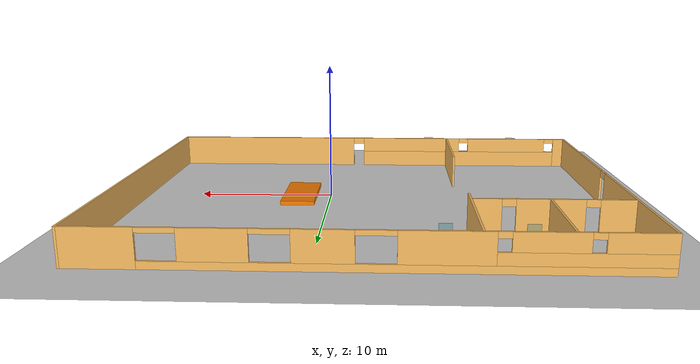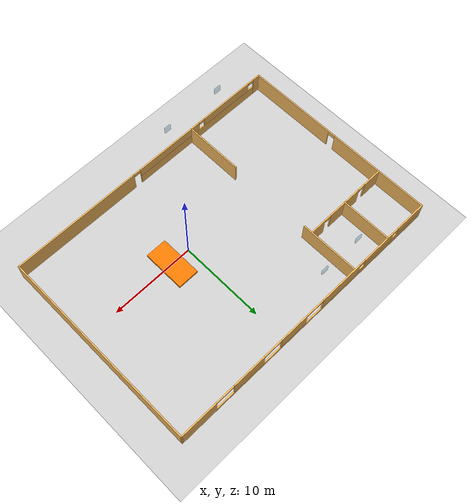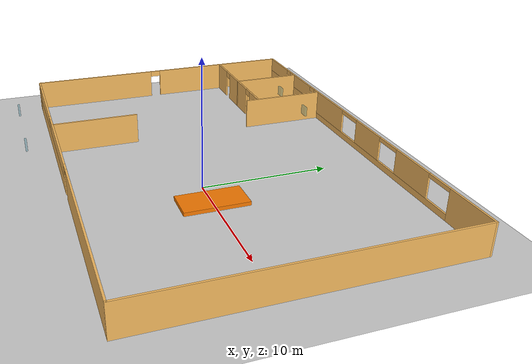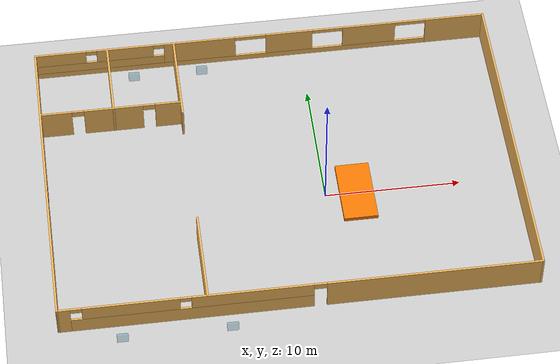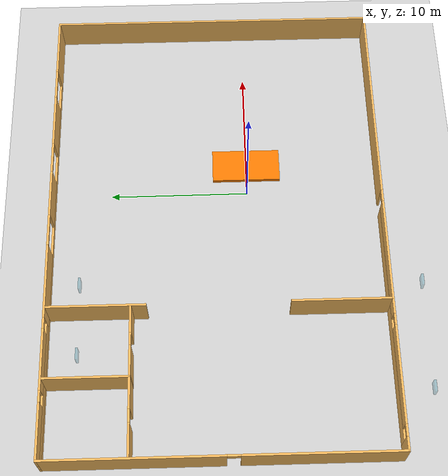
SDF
<sdf version="1.4">
 <world name="default">
  <gravity>0.0 0.0 -3.81</gravity>
  <include><uri>model://sun</uri></include>
  <include><uri>model://ground_plane</uri></include>
  <include><uri>model://AdrianTemple</uri></include>
  <include>
   <uri>model://small_window</uri>
   <name>small_window1</name>
   <pose>-7.803750 11.928600 0.793608 0 0 0</pose>
  </include>
  <include>
   <uri>model://small_window</uri>
   <name>small_window2</name>
   <pose>-12.936800 11.925300 0.793517 0 0 0</pose>
  </include>
  <include>
   <uri>model://small_window</uri>
   <name>small_window3</name>
   <pose>-8.153930 -11.925400 0.803719 0 0 0</pose>
  </include>
  <include>
   <uri>model://small_window</uri>
   <name>small_window4</name>
   <pose>-15.830200 -11.927700 0.805974 0 0 0</pose>
  </include>
  <include><uri>model://small_floor</uri><name>small_floor</name><pose>2.3 0 0 0 0 0</pose></include>
 </world>
</sdf>

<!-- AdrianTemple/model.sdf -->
<sdf version='1.6'>
  <model name='AdrianTemple'>
    <pose frame=''>-3.03305 2.27028 0 0 -0 0</pose>
    <link name='Wall_10'>
      <pose frame=''>-0 -11.925 0 0 -0 0</pose>
      <visual name='Wall_10_Visual_0'>
        <pose frame=''>-16.746 0 1.25 0 -0 0</pose>
        <geometry>
          <box>
            <size>1.00805 0.15 2.5</size>
          </box>
        </geometry>
        <material>
          <script>
            <uri>file://media/materials/scripts/gazebo.material</uri>
            <name>Gazebo/Grey</name>
          </script>
          <ambient>0.952941 0.721569 0.368627 1</ambient>
        </material>
        <meta>
          <layer>0</layer>
        </meta>
      </visual>
      <collision name='Wall_10_Collision_0'>
        <geometry>
          <box>
            <size>1.00805 0.15 2.5</size>
          </box>
        </geometry>
        <pose frame=''>-16.746 0 1.25 0 -0 0</pose>
      </collision>
      <visual name='Wall_10_Visual_1'>
        <pose frame=''>9.5202 0 1.25 0 -0 0</pose>
        <geometry>
          <box>
            <size>15.4596 0.15 2.5</size>
          </box>
        </geometry>
        <material>
          <script>
            <uri>file://media/materials/scripts/gazebo.material</uri>
            <name>Gazebo/Grey</name>
          </script>
          <ambient>0.952941 0.721569 0.368627 1</ambient>
        </material>
        <meta>
          <layer>0</layer>
        </meta>
      </visual>
      <collision name='Wall_10_Collision_1'>
        <geometry>
          <box>
            <size>15.4596 0.15 2.5</size>
          </box>
        </geometry>
        <pose frame=''>9.5202 0 1.25 0 -0 0</pose>
      </collision>
      <visual name='Wall_10_Visual_2'>
        <pose frame=''>-7.67577 0 0.65 0 -0 0</pose>
        <geometry>
          <box>
            <size>17.1324 0.15 1.3</size>
          </box>
        </geometry>
        <material>
          <script>
            <uri>file://media/materials/scripts/gazebo.material</uri>
            <name>Gazebo/Grey</name>
          </script>
          <ambient>0.952941 0.721569 0.368627 1</ambient>
        </material>
        <meta>
          <layer>0</layer>
        </meta>
      </visual>
      <collision name='Wall_10_Collision_2'>
        <geometry>
          <box>
            <size>17.1324 0.15 1.3</size>
          </box>
        </geometry>
        <pose frame=''>-7.67577 0 0.65 0 -0 0</pose>
      </collision>
      <visual name='Wall_10_Visual_3'>
        <pose frame=''>-12.0029 0 1.9 0 -0 0</pose>
        <geometry>
          <box>
            <size>6.87815 0.15 1.2</size>
          </box>
        </geometry>
        <material>
          <script>
            <uri>file://media/materials/scripts/gazebo.material</uri>
            <name>Gazebo/Grey</name>
          </script>
          <ambient>0.952941 0.721569 0.368627 1</ambient>
        </material>
        <meta>
          <layer>0</layer>
        </meta>
      </visual>
      <collision name='Wall_10_Collision_3'>
        <geometry>
          <box>
            <size>6.87815 0.15 1.2</size>
          </box>
        </geometry>
        <pose frame=''>-12.0029 0 1.9 0 -0 0</pose>
      </collision>
      <visual name='Wall_10_Visual_4'>
        <pose frame=''>-3.43669 0 1.9 0 -0 0</pose>
        <geometry>
          <box>
            <size>8.65421 0.15 1.2</size>
          </box>
        </geometry>
        <material>
          <script>
            <uri>file://media/materials/scripts/gazebo.material</uri>
            <name>Gazebo/Grey</name>
          </script>
          <ambient>0.952941 0.721569 0.368627 1</ambient>
        </material>
        <meta>
          <layer>0</layer>
        </meta>
      </visual>
      <collision name='Wall_10_Collision_4'>
        <geometry>
          <box>
            <size>8.65421 0.15 1.2</size>
          </box>
        </geometry>
        <pose frame=''>-3.43669 0 1.9 0 -0 0</pose>
      </collision>
      <visual name='Wall_10_Visual_5'>
        <pose frame=''>1.34041 0 2.25 0 -0 0</pose>
        <geometry>
          <box>
            <size>0.9 0.15 0.5</size>
          </box>
        </geometry>
        <material>
          <script>
            <uri>file://media/materials/scripts/gazebo.material</uri>
            <name>Gazebo/Grey</name>
          </script>
          <ambient>0.952941 0.721569 0.368627 1</ambient>
        </material>
        <meta>
          <layer>0</layer>
        </meta>
      </visual>
      <collision name='Wall_10_Collision_5'>
        <geometry>
          <box>
            <size>0.9 0.15 0.5</size>
          </box>
        </geometry>
        <pose frame=''>1.34041 0 2.25 0 -0 0</pose>
      </collision>
      <visual name='Wall_10_Visual_6'>
        <pose frame=''>-15.8419 0 2.3 0 -0 0</pose>
        <geometry>
          <box>
            <size>0.8 0.15 0.4</size>
          </box>
        </geometry>
        <material>
          <script>
            <uri>file://media/materials/scripts/gazebo.material</uri>
            <name>Gazebo/Grey</name>
          </script>
          <ambient>0.952941 0.721569 0.368627 1</ambient>
        </material>
        <meta>
          <layer>0</layer>
        </meta>
      </visual>
      <collision name='Wall_10_Collision_6'>
        <geometry>
          <box>
            <size>0.8 0.15 0.4</size>
          </box>
        </geometry>
        <pose frame=''>-15.8419 0 2.3 0 -0 0</pose>
      </collision>
      <visual name='Wall_10_Visual_7'>
        <pose frame=''>-8.1638 0 2.3 0 -0 0</pose>
        <geometry>
          <box>
            <size>0.8 0.15 0.4</size>
          </box>
        </geometry>
        <material>
          <script>
            <uri>file://media/materials/scripts/gazebo.material</uri>
            <name>Gazebo/Grey</name>
          </script>
          <ambient>0.952941 0.721569 0.368627 1</ambient>
        </material>
        <meta>
          <layer>0</layer>
        </meta>
      </visual>
      <collision name='Wall_10_Collision_7'>
        <geometry>
          <box>
            <size>0.8 0.15 0.4</size>
          </box>
        </geometry>
        <pose frame=''>-8.1638 0 2.3 0 -0 0</pose>
      </collision>
    </link>
    <link name='Wall_12'>
      <collision name='Wall_12_Collision'>
        <geometry>
          <box>
            <size>24 0.15 2.5</size>
          </box>
        </geometry>
        <pose frame=''>0 0 1.25 0 -0 0</pose>
      </collision>
      <visual name='Wall_12_Visual'>
        <pose frame=''>0 0 1.25 0 -0 0</pose>
        <geometry>
          <box>
            <size>24 0.15 2.5</size>
          </box>
        </geometry>
        <material>
          <script>
            <uri>file://media/materials/scripts/gazebo.material</uri>
            <name>Gazebo/Grey</name>
          </script>
          <ambient>0.952941 0.721569 0.368627 1</ambient>
        </material>
        <meta>
          <layer>0</layer>
        </meta>
      </visual>
      <pose frame=''>17.175 -0 0 0 -0 1.5708</pose>
    </link>
    <link name='Wall_16'>
      <pose frame=''>-0 11.925 0 0 -0 3.14159</pose>
      <visual name='Wall_16_Visual_0'>
        <pose frame=''>-14.9903 0 1.25 0 -0 0</pose>
        <geometry>
          <box>
            <size>4.51944 0.15 2.5</size>
          </box>
        </geometry>
        <material>
          <script>
            <uri>file://media/materials/scripts/gazebo.material</uri>
            <name>Gazebo/Grey</name>
          </script>
          <ambient>0.952941 0.721569 0.368627 1</ambient>
        </material>
        <meta>
          <layer>0</layer>
        </meta>
      </visual>
      <collision name='Wall_16_Collision_0'>
        <geometry>
          <box>
            <size>4.51944 0.15 2.5</size>
          </box>
        </geometry>
        <pose frame=''>-14.9903 0 1.25 0 -0 0</pose>
      </collision>
      <visual name='Wall_16_Visual_1'>
        <pose frame=''>2.25972 0 0.25 0 -0 0</pose>
        <geometry>
          <box>
            <size>29.9806 0.15 0.5</size>
          </box>
        </geometry>
        <material>
          <script>
            <uri>file://media/materials/scripts/gazebo.material</uri>
            <name>Gazebo/Grey</name>
          </script>
          <ambient>0.952941 0.721569 0.368627 1</ambient>
        </material>
        <meta>
          <layer>0</layer>
        </meta>
      </visual>
      <collision name='Wall_16_Collision_1'>
        <geometry>
          <box>
            <size>29.9806 0.15 0.5</size>
          </box>
        </geometry>
        <pose frame=''>2.25972 0 0.25 0 -0 0</pose>
      </collision>
      <visual name='Wall_16_Visual_2'>
        <pose frame=''>-8.3575 0 1.5 0 -0 0</pose>
        <geometry>
          <box>
            <size>4.06611 0.15 2</size>
          </box>
        </geometry>
        <material>
          <script>
            <uri>file://media/materials/scripts/gazebo.material</uri>
            <name>Gazebo/Grey</name>
          </script>
          <ambient>0.952941 0.721569 0.368627 1</ambient>
        </material>
        <meta>
          <layer>0</layer>
        </meta>
      </visual>
      <collision name='Wall_16_Collision_2'>
        <geometry>
          <box>
            <size>4.06611 0.15 2</size>
          </box>
        </geometry>
        <pose frame=''>-8.3575 0 1.5 0 -0 0</pose>
      </collision>
      <visual name='Wall_16_Visual_3'>
        <pose frame=''>-2.19098 0 1.5 0 -0 0</pose>
        <geometry>
          <box>
            <size>3.58692 0.15 2</size>
          </box>
        </geometry>
        <material>
          <script>
            <uri>file://media/materials/scripts/gazebo.material</uri>
            <name>Gazebo/Grey</name>
          </script>
          <ambient>0.952941 0.721569 0.368627 1</ambient>
        </material>
        <meta>
          <layer>0</layer>
        </meta>
      </visual>
      <collision name='Wall_16_Collision_3'>
        <geometry>
          <box>
            <size>3.58692 0.15 2</size>
          </box>
        </geometry>
        <pose frame=''>-2.19098 0 1.5 0 -0 0</pose>
      </collision>
      <visual name='Wall_16_Visual_4'>
        <pose frame=''>4.6747 0 1.5 0 -0 0</pose>
        <geometry>
          <box>
            <size>5.46443 0.15 2</size>
          </box>
        </geometry>
        <material>
          <script>
            <uri>file://media/materials/scripts/gazebo.material</uri>
            <name>Gazebo/Grey</name>
          </script>
          <ambient>0.952941 0.721569 0.368627 1</ambient>
        </material>
        <meta>
          <layer>0</layer>
        </meta>
      </visual>
      <collision name='Wall_16_Collision_4'>
        <geometry>
          <box>
            <size>5.46443 0.15 2</size>
          </box>
        </geometry>
        <pose frame=''>4.6747 0 1.5 0 -0 0</pose>
      </collision>
      <visual name='Wall_16_Visual_5'>
        <pose frame=''>12.3285 0 0.9 0 -0 0</pose>
        <geometry>
          <box>
            <size>9.84309 0.15 0.8</size>
          </box>
        </geometry>
        <material>
          <script>
            <uri>file://media/materials/scripts/gazebo.material</uri>
            <name>Gazebo/Grey</name>
          </script>
          <ambient>0.952941 0.721569 0.368627 1</ambient>
        </material>
        <meta>
          <layer>0</layer>
        </meta>
      </visual>
      <collision name='Wall_16_Collision_5'>
        <geometry>
          <box>
            <size>9.84309 0.15 0.8</size>
          </box>
        </geometry>
        <pose frame=''>12.3285 0 0.9 0 -0 0</pose>
      </collision>
      <visual name='Wall_16_Visual_6'>
        <pose frame=''>10.37 0 1.9 0 -0 0</pose>
        <geometry>
          <box>
            <size>4.3261 0.15 1.2</size>
          </box>
        </geometry>
        <material>
          <script>
            <uri>file://media/materials/scripts/gazebo.material</uri>
            <name>Gazebo/Grey</name>
          </script>
          <ambient>0.952941 0.721569 0.368627 1</ambient>
        </material>
        <meta>
          <layer>0</layer>
        </meta>
      </visual>
      <collision name='Wall_16_Collision_6'>
        <geometry>
          <box>
            <size>4.3261 0.15 1.2</size>
          </box>
        </geometry>
        <pose frame=''>10.37 0 1.9 0 -0 0</pose>
      </collision>
      <visual name='Wall_16_Visual_7'>
        <pose frame=''>15.2915 0 1.9 0 -0 0</pose>
        <geometry>
          <box>
            <size>3.91699 0.15 1.2</size>
          </box>
        </geometry>
        <material>
          <script>
            <uri>file://media/materials/scripts/gazebo.material</uri>
            <name>Gazebo/Grey</name>
          </script>
          <ambient>0.952941 0.721569 0.368627 1</ambient>
        </material>
        <meta>
          <layer>0</layer>
        </meta>
      </visual>
      <collision name='Wall_16_Collision_7'>
        <geometry>
          <box>
            <size>3.91699 0.15 1.2</size>
          </box>
        </geometry>
        <pose frame=''>15.2915 0 1.9 0 -0 0</pose>
      </collision>
      <visual name='Wall_16_Visual_8'>
        <pose frame=''>7.80691 0 2.3 0 -0 0</pose>
        <geometry>
          <box>
            <size>0.8 0.15 0.4</size>
          </box>
        </geometry>
        <material>
          <script>
            <uri>file://media/materials/scripts/gazebo.material</uri>
            <name>Gazebo/Grey</name>
          </script>
          <ambient>0.952941 0.721569 0.368627 1</ambient>
        </material>
        <meta>
          <layer>0</layer>
        </meta>
      </visual>
      <collision name='Wall_16_Collision_8'>
        <geometry>
          <box>
            <size>0.8 0.15 0.4</size>
          </box>
        </geometry>
        <pose frame=''>7.80691 0 2.3 0 -0 0</pose>
      </collision>
      <visual name='Wall_16_Visual_9'>
        <pose frame=''>12.933 0 2.3 0 -0 0</pose>
        <geometry>
          <box>
            <size>0.8 0.15 0.4</size>
          </box>
        </geometry>
        <material>
          <script>
            <uri>file://media/materials/scripts/gazebo.material</uri>
            <name>Gazebo/Grey</name>
          </script>
          <ambient>0.952941 0.721569 0.368627 1</ambient>
        </material>
        <meta>
          <layer>0</layer>
        </meta>
      </visual>
      <collision name='Wall_16_Collision_9'>
        <geometry>
          <box>
            <size>0.8 0.15 0.4</size>
          </box>
        </geometry>
        <pose frame=''>12.933 0 2.3 0 -0 0</pose>
      </collision>
      <visual name='Wall_16_Visual_10'>
        <pose frame=''>-11.5606 0 2.34 0 -0 0</pose>
        <geometry>
          <box>
            <size>2.34 0.15 0.32</size>
          </box>
        </geometry>
        <material>
          <script>
            <uri>file://media/materials/scripts/gazebo.material</uri>
            <name>Gazebo/Grey</name>
          </script>
          <ambient>0.952941 0.721569 0.368627 1</ambient>
        </material>
        <meta>
          <layer>0</layer>
        </meta>
      </visual>
      <collision name='Wall_16_Collision_10'>
        <geometry>
          <box>
            <size>2.34 0.15 0.32</size>
          </box>
        </geometry>
        <pose frame=''>-11.5606 0 2.34 0 -0 0</pose>
      </collision>
      <visual name='Wall_16_Visual_11'>
        <pose frame=''>-5.15444 0 2.34 0 -0 0</pose>
        <geometry>
          <box>
            <size>2.34 0.15 0.32</size>
          </box>
        </geometry>
        <material>
          <script>
            <uri>file://media/materials/scripts/gazebo.material</uri>
            <name>Gazebo/Grey</name>
          </script>
          <ambient>0.952941 0.721569 0.368627 1</ambient>
        </material>
        <meta>
          <layer>0</layer>
        </meta>
      </visual>
      <collision name='Wall_16_Collision_11'>
        <geometry>
          <box>
            <size>2.34 0.15 0.32</size>
          </box>
        </geometry>
        <pose frame=''>-5.15444 0 2.34 0 -0 0</pose>
      </collision>
      <visual name='Wall_16_Visual_12'>
        <pose frame=''>0.772481 0 2.34 0 -0 0</pose>
        <geometry>
          <box>
            <size>2.34 0.15 0.32</size>
          </box>
        </geometry>
        <material>
          <script>
            <uri>file://media/materials/scripts/gazebo.material</uri>
            <name>Gazebo/Grey</name>
          </script>
          <ambient>0.952941 0.721569 0.368627 1</ambient>
        </material>
        <meta>
          <layer>0</layer>
        </meta>
      </visual>
      <collision name='Wall_16_Collision_12'>
        <geometry>
          <box>
            <size>2.34 0.15 0.32</size>
          </box>
        </geometry>
        <pose frame=''>0.772481 0 2.34 0 -0 0</pose>
      </collision>
    </link>
    <link name='Wall_24'>
      <collision name='Wall_24_Collision'>
        <geometry>
          <box>
            <size>7 0.15 2.5</size>
          </box>
        </geometry>
        <pose frame=''>0 0 1.25 0 -0 0</pose>
      </collision>
      <visual name='Wall_24_Visual'>
        <pose frame=''>0 0 1.25 0 -0 0</pose>
        <geometry>
          <box>
            <size>7 0.15 2.5</size>
          </box>
        </geometry>
        <material>
          <script>
            <uri>file://media/materials/scripts/gazebo.material</uri>
            <name>Gazebo/Grey</name>
          </script>
          <ambient>0.952941 0.721569 0.368627 1</ambient>
        </material>
        <meta>
          <layer>0</layer>
        </meta>
      </visual>
      <pose frame=''>-6.65895 8.45051 0 0 -0 -1.5708</pose>
    </link>
    <link name='Wall_29'>
      <pose frame=''>-11.9867 6.0382 0 0 -0 3.14159</pose>
      <visual name='Wall_29_Visual_0'>
        <pose frame=''>-4.30458 0 1.25 0 -0 0</pose>
        <geometry>
          <box>
            <size>1.89084 0.15 2.5</size>
          </box>
        </geometry>
        <material>
          <script>
            <uri>file://media/materials/scripts/gazebo.material</uri>
            <name>Gazebo/Grey</name>
          </script>
          <ambient>0.952941 0.721569 0.368627 1</ambient>
        </material>
        <meta>
          <layer>0</layer>
        </meta>
      </visual>
      <collision name='Wall_29_Collision_0'>
        <geometry>
          <box>
            <size>1.89084 0.15 2.5</size>
          </box>
        </geometry>
        <pose frame=''>-4.30458 0 1.25 0 -0 0</pose>
      </collision>
      <visual name='Wall_29_Visual_1'>
        <pose frame=''>-0.260705 0 1.25 0 -0 0</pose>
        <geometry>
          <box>
            <size>4.39691 0.15 2.5</size>
          </box>
        </geometry>
        <material>
          <script>
            <uri>file://media/materials/scripts/gazebo.material</uri>
            <name>Gazebo/Grey</name>
          </script>
          <ambient>0.952941 0.721569 0.368627 1</ambient>
        </material>
        <meta>
          <layer>0</layer>
        </meta>
      </visual>
      <collision name='Wall_29_Collision_1'>
        <geometry>
          <box>
            <size>4.39691 0.15 2.5</size>
          </box>
        </geometry>
        <pose frame=''>-0.260705 0 1.25 0 -0 0</pose>
      </collision>
      <visual name='Wall_29_Visual_2'>
        <pose frame=''>4.04387 0 1.25 0 -0 0</pose>
        <geometry>
          <box>
            <size>2.41225 0.15 2.5</size>
          </box>
        </geometry>
        <material>
          <script>
            <uri>file://media/materials/scripts/gazebo.material</uri>
            <name>Gazebo/Grey</name>
          </script>
          <ambient>0.952941 0.721569 0.368627 1</ambient>
        </material>
        <meta>
          <layer>0</layer>
        </meta>
      </visual>
      <collision name='Wall_29_Collision_2'>
        <geometry>
          <box>
            <size>2.41225 0.15 2.5</size>
          </box>
        </geometry>
        <pose frame=''>4.04387 0 1.25 0 -0 0</pose>
      </collision>
      <visual name='Wall_29_Visual_3'>
        <pose frame=''>-2.90916 0 2.25 0 -0 0</pose>
        <geometry>
          <box>
            <size>0.9 0.15 0.5</size>
          </box>
        </geometry>
        <material>
          <script>
            <uri>file://media/materials/scripts/gazebo.material</uri>
            <name>Gazebo/Grey</name>
          </script>
          <ambient>0.952941 0.721569 0.368627 1</ambient>
        </material>
        <meta>
          <layer>0</layer>
        </meta>
      </visual>
      <collision name='Wall_29_Collision_3'>
        <geometry>
          <box>
            <size>0.9 0.15 0.5</size>
          </box>
        </geometry>
        <pose frame=''>-2.90916 0 2.25 0 -0 0</pose>
      </collision>
      <visual name='Wall_29_Visual_4'>
        <pose frame=''>2.38775 0 2.25 0 -0 0</pose>
        <geometry>
          <box>
            <size>0.9 0.15 0.5</size>
          </box>
        </geometry>
        <material>
          <script>
            <uri>file://media/materials/scripts/gazebo.material</uri>
            <name>Gazebo/Grey</name>
          </script>
          <ambient>0.952941 0.721569 0.368627 1</ambient>
        </material>
        <meta>
          <layer>0</layer>
        </meta>
      </visual>
      <collision name='Wall_29_Collision_4'>
        <geometry>
          <box>
            <size>0.9 0.15 0.5</size>
          </box>
        </geometry>
        <pose frame=''>2.38775 0 2.25 0 -0 0</pose>
      </collision>
    </link>
    <link name='Wall_31'>
      <pose frame=''>-17.175 -0 0 0 -0 -1.5708</pose>
      <visual name='Wall_31_Visual_0'>
        <pose frame=''>-5.86076 0 1.25 0 -0 0</pose>
        <geometry>
          <box>
            <size>12.2785 0.15 2.5</size>
          </box>
        </geometry>
        <material>
          <script>
            <uri>file://media/materials/scripts/gazebo.material</uri>
            <name>Gazebo/Grey</name>
          </script>
          <ambient>0.952941 0.721569 0.368627 1</ambient>
        </material>
        <meta>
          <layer>0</layer>
        </meta>
      </visual>
      <collision name='Wall_31_Collision_0'>
        <geometry>
          <box>
            <size>12.2785 0.15 2.5</size>
          </box>
        </geometry>
        <pose frame=''>-5.86076 0 1.25 0 -0 0</pose>
      </collision>
      <visual name='Wall_31_Visual_1'>
        <pose frame=''>6.58925 0 1.25 0 -0 0</pose>
        <geometry>
          <box>
            <size>10.8215 0.15 2.5</size>
          </box>
        </geometry>
        <material>
          <script>
            <uri>file://media/materials/scripts/gazebo.material</uri>
            <name>Gazebo/Grey</name>
          </script>
          <ambient>0.952941 0.721569 0.368627 1</ambient>
        </material>
        <meta>
          <layer>0</layer>
        </meta>
      </visual>
      <collision name='Wall_31_Collision_1'>
        <geometry>
          <box>
            <size>10.8215 0.15 2.5</size>
          </box>
        </geometry>
        <pose frame=''>6.58925 0 1.25 0 -0 0</pose>
      </collision>
      <visual name='Wall_31_Visual_2'>
        <pose frame=''>0.728491 0 2.25 0 -0 0</pose>
        <geometry>
          <box>
            <size>0.9 0.15 0.5</size>
          </box>
        </geometry>
        <material>
          <script>
            <uri>file://media/materials/scripts/gazebo.material</uri>
            <name>Gazebo/Grey</name>
          </script>
          <ambient>0.952941 0.721569 0.368627 1</ambient>
        </material>
        <meta>
          <layer>0</layer>
        </meta>
      </visual>
      <collision name='Wall_31_Collision_2'>
        <geometry>
          <box>
            <size>0.9 0.15 0.5</size>
          </box>
        </geometry>
        <pose frame=''>0.728491 0 2.25 0 -0 0</pose>
      </collision>
    </link>
    <link name='Wall_33'>
      <collision name='Wall_33_Collision'>
        <geometry>
          <box>
            <size>7 0.15 2.5</size>
          </box>
        </geometry>
        <pose frame=''>0 0 1.25 0 -0 0</pose>
      </collision>
      <visual name='Wall_33_Visual'>
        <pose frame=''>0 0 1.25 0 -0 0</pose>
        <geometry>
          <box>
            <size>7 0.15 2.5</size>
          </box>
        </geometry>
        <material>
          <script>
            <uri>file://media/materials/scripts/gazebo.material</uri>
            <name>Gazebo/Grey</name>
          </script>
          <ambient>0.952941 0.721569 0.368627 1</ambient>
        </material>
        <meta>
          <layer>0</layer>
        </meta>
      </visual>
      <pose frame=''>-6.63181 -8.44954 0 0 -0 1.5708</pose>
    </link>
    <link name='Wall_35'>
      <collision name='Wall_35_Collision'>
        <geometry>
          <box>
            <size>6 0.15 2.5</size>
          </box>
        </geometry>
        <pose frame=''>0 0 1.25 0 -0 0</pose>
      </collision>
      <visual name='Wall_35_Visual'>
        <pose frame=''>0 0 1.25 0 -0 0</pose>
        <geometry>
          <box>
            <size>6 0.15 2.5</size>
          </box>
        </geometry>
        <material>
          <script>
            <uri>file://media/materials/scripts/gazebo.material</uri>
            <name>Gazebo/Grey</name>
          </script>
          <ambient>0.952941 0.721569 0.368627 1</ambient>
        </material>
        <meta>
          <layer>0</layer>
        </meta>
      </visual>
      <pose frame=''>-11.7202 8.95509 0 0 -0 -1.5708</pose>
    </link>
    <static>1</static>
  </model>
</sdf>

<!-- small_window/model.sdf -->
<sdf version='1.6'>
  <model name='small_window'>
    <link name='link_2'>
         <visual name='visual'>
        <pose frame=''>0 0 0.9 0 -0 0</pose>
        <geometry>
          <box>
            <size>0.8 0.15 0.8</size>
          </box>
        </geometry>
         <material>
          <lighting>1</lighting>
             <ambient>0.1 0.5 0.6 1</ambient>
          <diffuse>0.1 0.5 0.6 1</diffuse>
          <specular>0.01 0.01 0.01 1</specular>
          <emissive>0 0 0 1</emissive>
        </material>
        <cast_shadows>1</cast_shadows>
        <transparency>0.7</transparency>
      </visual>
      <collision name='collision'>
        <laser_retro>0</laser_retro>
        <max_contacts>10</max_contacts>
        <pose frame=''>0 0 0.9 0 -0 0</pose>
        <geometry>
          <box>
            <size>0.8 0.15 0.8</size>
          </box>
        </geometry>

      </collision>
    </link>
    <static>1</static>
    <allow_auto_disable>1</allow_auto_disable>
  </model>
</sdf>

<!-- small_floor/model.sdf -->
<sdf version='1.6'>
  <model name='small_floor'>
    <link name='link_0'>
      <inertial>
        <mass>1</mass>
        <inertia>
          <ixx>0.166667</ixx>
          <ixy>0</ixy>
          <ixz>0</ixz>
          <iyy>0.166667</iyy>
          <iyz>0</iyz>
          <izz>0.166667</izz>
        </inertia>
        <pose frame=''>0 0 0.15 0 -0 0</pose>
      </inertial>
      <pose frame=''>0 0 0 0 -0 0</pose>
      <gravity>1</gravity>
      <self_collide>0</self_collide>
      <kinematic>0</kinematic>
      <enable_wind>0</enable_wind>
      <visual name='visual'>
        <pose frame=''>0 0 0.15 0 -0 0</pose>
        <geometry>
          <box>
            <size>2.5 5 0.3</size>
          </box>
        </geometry>
        <material>
          <lighting>1</lighting>
          <script>
            <uri>file://media/materials/scripts/gazebo.material</uri>
            <name>Gazebo/Grey</name>
          </script>
          <shader type='pixel'>
            <normal_map>__default__</normal_map>
          </shader>
          <ambient>0.561 0.349 0.008 1</ambient>
          <diffuse>0.961 0.475 0 1</diffuse>
          <specular>0.561 0.349 0.008 1</specular>
          <emissive>0 0 0 1</emissive>
        </material>
        <transparency>0</transparency>
        <cast_shadows>1</cast_shadows>
      </visual>
      <collision name='collision'>
        <laser_retro>0</laser_retro>
        <max_contacts>10</max_contacts>
        <pose frame=''>0 0 0.15 0 -0 0</pose>
        <geometry>
          <box>
            <size>2.5 5 0.3</size>
          </box>
        </geometry>
        <surface>
          <friction>
            <ode>
              <mu>1</mu>
              <mu2>1</mu2>
              <fdir1>0 0 0</fdir1>
              <slip1>0</slip1>
              <slip2>0</slip2>
            </ode>
            <torsional>
              <coefficient>1</coefficient>
              <patch_radius>0</patch_radius>
              <surface_radius>0</surface_radius>
              <use_patch_radius>1</use_patch_radius>
              <ode>
                <slip>0</slip>
              </ode>
            </torsional>
          </friction>
          <bounce>
            <restitution_coefficient>0</restitution_coefficient>
            <threshold>1e+06</threshold>
          </bounce>
          <contact>
            <collide_without_contact>0</collide_without_contact>
            <collide_without_contact_bitmask>1</collide_without_contact_bitmask>
            <collide_bitmask>1</collide_bitmask>
            <ode>
              <soft_cfm>0</soft_cfm>
              <soft_erp>0.2</soft_erp>
              <kp>1e+13</kp>
              <kd>1</kd>
              <max_vel>0.01</max_vel>
              <min_depth>0</min_depth>
            </ode>
            <bullet>
              <split_impulse>1</split_impulse>
              <split_impulse_penetration_threshold>-0.01</split_impulse_penetration_threshold>
              <soft_cfm>0</soft_cfm>
              <soft_erp>0.2</soft_erp>
              <kp>1e+13</kp>
              <kd>1</kd>
            </bullet>
          </contact>
        </surface>
      </collision>
    </link>
    <static>1</static>
    <allow_auto_disable>1</allow_auto_disable>
  </model>
</sdf>
